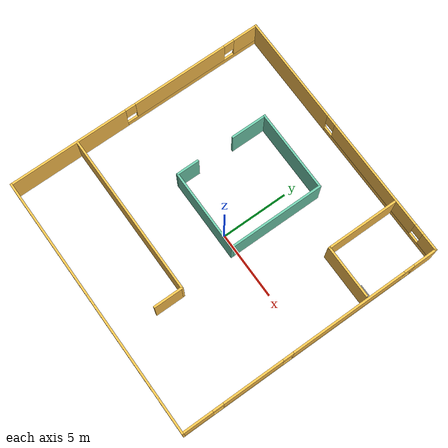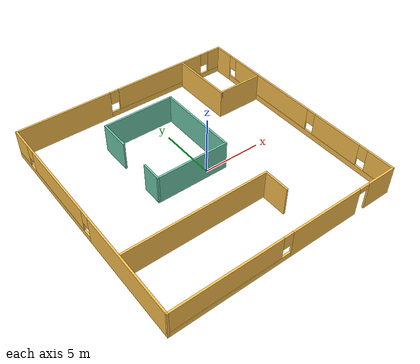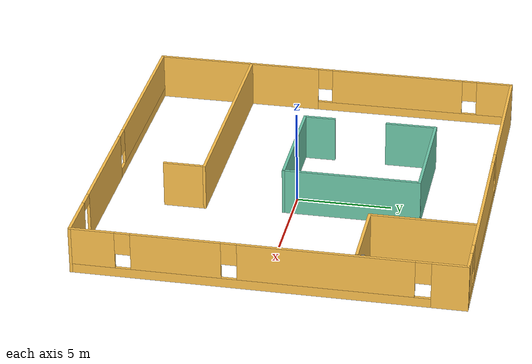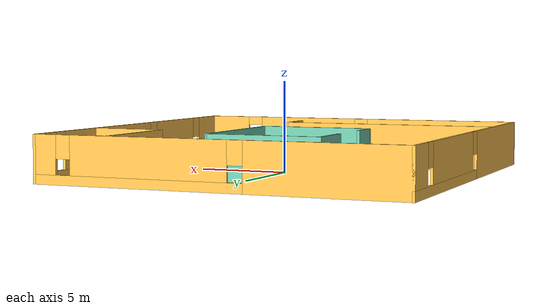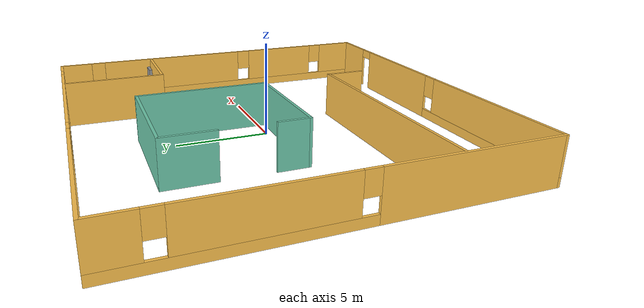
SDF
<?xml version='1.0'?>
<sdf version='1.6'>
  <model name='better_office'>
    <pose frame=''>-0.62787 0.187364 0 0 -0 0</pose>
    <link name='Door_0'>
      <collision name='Door_0_Collision'>
        <geometry>
          <box>
            <size>0.9 0.17 2</size>
          </box>
        </geometry>
        <pose frame=''>0 0 1 0 -0 0</pose>
      </collision>
      <visual name='Door_0_Visual'>
        <pose frame=''>0 0 1 0 -0 0</pose>
        <geometry>
          <box>
            <size>0.9 0.17 2</size>
          </box>
        </geometry>
        <material>
          <script>
            <uri>file://media/materials/scripts/gazebo.material</uri>
            <name>Gazebo/Grey</name>
          </script>
        </material>
      </visual>
      <pose frame=''>9.27377 4.6409 0 0 -0 0</pose>
    </link>
    <link name='Wall_11'>
      <pose frame=''>0 9.925 0 0 -0 0</pose>
      <visual name='Wall_11_Visual_0'>
        <pose frame=''>-5.73664 0 1.25 0 -0 0</pose>
        <geometry>
          <box>
            <size>8.27672 0.15 2.5</size>
          </box>
        </geometry>
        <material>
          <script>
            <uri>file://media/materials/scripts/gazebo.material</uri>
            <name>Gazebo/Grey</name>
          </script>
          <ambient>1 0.764706 0.305882 1</ambient>
        </material>
      </visual>
      <collision name='Wall_11_Collision_0'>
        <geometry>
          <box>
            <size>8.27672 0.15 2.5</size>
          </box>
        </geometry>
        <pose frame=''>-5.73664 0 1.25 0 -0 0</pose>
      </collision>
      <visual name='Wall_11_Visual_1'>
        <pose frame=''>4.13836 0 0.25 0 -0 0</pose>
        <geometry>
          <box>
            <size>11.4733 0.15 0.5</size>
          </box>
        </geometry>
        <material>
          <script>
            <uri>file://media/materials/scripts/gazebo.material</uri>
            <name>Gazebo/Grey</name>
          </script>
          <ambient>1 0.764706 0.305882 1</ambient>
        </material>
      </visual>
      <collision name='Wall_11_Collision_1'>
        <geometry>
          <box>
            <size>11.4733 0.15 0.5</size>
          </box>
        </geometry>
        <pose frame=''>4.13836 0 0.25 0 -0 0</pose>
      </collision>
      <visual name='Wall_11_Visual_2'>
        <pose frame=''>3.47169 0 1.5 0 -0 0</pose>
        <geometry>
          <box>
            <size>8.53993 0.15 2</size>
          </box>
        </geometry>
        <material>
          <script>
            <uri>file://media/materials/scripts/gazebo.material</uri>
            <name>Gazebo/Grey</name>
          </script>
          <ambient>1 0.764706 0.305882 1</ambient>
        </material>
      </visual>
      <collision name='Wall_11_Collision_2'>
        <geometry>
          <box>
            <size>8.53993 0.15 2</size>
          </box>
        </geometry>
        <pose frame=''>3.47169 0 1.5 0 -0 0</pose>
      </collision>
      <visual name='Wall_11_Visual_3'>
        <pose frame=''>9.20833 0 1.5 0 -0 0</pose>
        <geometry>
          <box>
            <size>1.33335 0.15 2</size>
          </box>
        </geometry>
        <material>
          <script>
            <uri>file://media/materials/scripts/gazebo.material</uri>
            <name>Gazebo/Grey</name>
          </script>
          <ambient>1 0.764706 0.305882 1</ambient>
        </material>
      </visual>
      <collision name='Wall_11_Collision_3'>
        <geometry>
          <box>
            <size>1.33335 0.15 2</size>
          </box>
        </geometry>
        <pose frame=''>9.20833 0 1.5 0 -0 0</pose>
      </collision>
      <visual name='Wall_11_Visual_4'>
        <pose frame=''>-1.19828 0 1.9 0 -0 0</pose>
        <geometry>
          <box>
            <size>0.8 0.15 1.2</size>
          </box>
        </geometry>
        <material>
          <script>
            <uri>file://media/materials/scripts/gazebo.material</uri>
            <name>Gazebo/Grey</name>
          </script>
          <ambient>1 0.764706 0.305882 1</ambient>
        </material>
      </visual>
      <collision name='Wall_11_Collision_4'>
        <geometry>
          <box>
            <size>0.8 0.15 1.2</size>
          </box>
        </geometry>
        <pose frame=''>-1.19828 0 1.9 0 -0 0</pose>
      </collision>
      <visual name='Wall_11_Visual_5'>
        <pose frame=''>8.14165 0 1.9 0 -0 0</pose>
        <geometry>
          <box>
            <size>0.8 0.15 1.2</size>
          </box>
        </geometry>
        <material>
          <script>
            <uri>file://media/materials/scripts/gazebo.material</uri>
            <name>Gazebo/Grey</name>
          </script>
          <ambient>1 0.764706 0.305882 1</ambient>
        </material>
      </visual>
      <collision name='Wall_11_Collision_5'>
        <geometry>
          <box>
            <size>0.8 0.15 1.2</size>
          </box>
        </geometry>
        <pose frame=''>8.14165 0 1.9 0 -0 0</pose>
      </collision>
    </link>
    <link name='Wall_12'>
      <pose frame=''>9.8 0 0 0 0 -1.5708</pose>
      <visual name='Wall_12_Visual_0'>
        <pose frame=''>-9.07711 0 1.25 0 -0 0</pose>
        <geometry>
          <box>
            <size>1.84579 0.15 2.5</size>
          </box>
        </geometry>
        <material>
          <script>
            <uri>file://media/materials/scripts/gazebo.material</uri>
            <name>Gazebo/Grey</name>
          </script>
          <ambient>1 0.764706 0.305882 1</ambient>
        </material>
      </visual>
      <collision name='Wall_12_Collision_0'>
        <geometry>
          <box>
            <size>1.84579 0.15 2.5</size>
          </box>
        </geometry>
        <pose frame=''>-9.07711 0 1.25 0 -0 0</pose>
      </collision>
      <visual name='Wall_12_Visual_1'>
        <pose frame=''>0.922894 0 0.25 0 -0 0</pose>
        <geometry>
          <box>
            <size>18.1542 0.15 0.5</size>
          </box>
        </geometry>
        <material>
          <script>
            <uri>file://media/materials/scripts/gazebo.material</uri>
            <name>Gazebo/Grey</name>
          </script>
          <ambient>1 0.764706 0.305882 1</ambient>
        </material>
      </visual>
      <collision name='Wall_12_Collision_1'>
        <geometry>
          <box>
            <size>18.1542 0.15 0.5</size>
          </box>
        </geometry>
        <pose frame=''>0.922894 0 0.25 0 -0 0</pose>
      </collision>
      <visual name='Wall_12_Visual_2'>
        <pose frame=''>-2.94273 0 1.5 0 -0 0</pose>
        <geometry>
          <box>
            <size>8.82296 0.15 2</size>
          </box>
        </geometry>
        <material>
          <script>
            <uri>file://media/materials/scripts/gazebo.material</uri>
            <name>Gazebo/Grey</name>
          </script>
          <ambient>1 0.764706 0.305882 1</ambient>
        </material>
      </visual>
      <collision name='Wall_12_Collision_2'>
        <geometry>
          <box>
            <size>8.82296 0.15 2</size>
          </box>
        </geometry>
        <pose frame=''>-2.94273 0 1.5 0 -0 0</pose>
      </collision>
      <visual name='Wall_12_Visual_3'>
        <pose frame=''>4.55752 0 1.5 0 -0 0</pose>
        <geometry>
          <box>
            <size>4.57754 0.15 2</size>
          </box>
        </geometry>
        <material>
          <script>
            <uri>file://media/materials/scripts/gazebo.material</uri>
            <name>Gazebo/Grey</name>
          </script>
          <ambient>1 0.764706 0.305882 1</ambient>
        </material>
      </visual>
      <collision name='Wall_12_Collision_3'>
        <geometry>
          <box>
            <size>4.57754 0.15 2</size>
          </box>
        </geometry>
        <pose frame=''>4.55752 0 1.5 0 -0 0</pose>
      </collision>
      <visual name='Wall_12_Visual_4'>
        <pose frame=''>8.82314 0 1.5 0 -0 0</pose>
        <geometry>
          <box>
            <size>2.35371 0.15 2</size>
          </box>
        </geometry>
        <material>
          <script>
            <uri>file://media/materials/scripts/gazebo.material</uri>
            <name>Gazebo/Grey</name>
          </script>
          <ambient>1 0.764706 0.305882 1</ambient>
        </material>
      </visual>
      <collision name='Wall_12_Collision_4'>
        <geometry>
          <box>
            <size>2.35371 0.15 2</size>
          </box>
        </geometry>
        <pose frame=''>8.82314 0 1.5 0 -0 0</pose>
      </collision>
      <visual name='Wall_12_Visual_5'>
        <pose frame=''>-7.75421 0 1.9 0 -0 0</pose>
        <geometry>
          <box>
            <size>0.8 0.15 1.2</size>
          </box>
        </geometry>
        <material>
          <script>
            <uri>file://media/materials/scripts/gazebo.material</uri>
            <name>Gazebo/Grey</name>
          </script>
          <ambient>1 0.764706 0.305882 1</ambient>
        </material>
      </visual>
      <collision name='Wall_12_Collision_5'>
        <geometry>
          <box>
            <size>0.8 0.15 1.2</size>
          </box>
        </geometry>
        <pose frame=''>-7.75421 0 1.9 0 -0 0</pose>
      </collision>
      <visual name='Wall_12_Visual_6'>
        <pose frame=''>1.86875 0 1.9 0 -0 0</pose>
        <geometry>
          <box>
            <size>0.8 0.15 1.2</size>
          </box>
        </geometry>
        <material>
          <script>
            <uri>file://media/materials/scripts/gazebo.material</uri>
            <name>Gazebo/Grey</name>
          </script>
          <ambient>1 0.764706 0.305882 1</ambient>
        </material>
      </visual>
      <collision name='Wall_12_Collision_6'>
        <geometry>
          <box>
            <size>0.8 0.15 1.2</size>
          </box>
        </geometry>
        <pose frame=''>1.86875 0 1.9 0 -0 0</pose>
      </collision>
      <visual name='Wall_12_Visual_7'>
        <pose frame=''>7.24629 0 1.9 0 -0 0</pose>
        <geometry>
          <box>
            <size>0.8 0.15 1.2</size>
          </box>
        </geometry>
        <material>
          <script>
            <uri>file://media/materials/scripts/gazebo.material</uri>
            <name>Gazebo/Grey</name>
          </script>
          <ambient>1 0.764706 0.305882 1</ambient>
        </material>
      </visual>
      <collision name='Wall_12_Collision_7'>
        <geometry>
          <box>
            <size>0.8 0.15 1.2</size>
          </box>
        </geometry>
        <pose frame=''>7.24629 0 1.9 0 -0 0</pose>
      </collision>
    </link>
    <link name='Wall_13'>
      <pose frame=''>0 -9.925 0 0 -0 3.14159</pose>
      <visual name='Wall_13_Visual_0'>
        <pose frame=''>-8.56113 0 1.25 0 -0 0</pose>
        <geometry>
          <box>
            <size>2.62773 0.15 2.5</size>
          </box>
        </geometry>
        <material>
          <script>
            <uri>file://media/materials/scripts/gazebo.material</uri>
            <name>Gazebo/Grey</name>
          </script>
          <ambient>1 0.764706 0.305882 1</ambient>
        </material>
      </visual>
      <collision name='Wall_13_Collision_0'>
        <geometry>
          <box>
            <size>2.62773 0.15 2.5</size>
          </box>
        </geometry>
        <pose frame=''>-8.56113 0 1.25 0 -0 0</pose>
      </collision>
      <visual name='Wall_13_Visual_1'>
        <pose frame=''>-3.19904 0 1.25 0 -0 0</pose>
        <geometry>
          <box>
            <size>6.29646 0.15 2.5</size>
          </box>
        </geometry>
        <material>
          <script>
            <uri>file://media/materials/scripts/gazebo.material</uri>
            <name>Gazebo/Grey</name>
          </script>
          <ambient>1 0.764706 0.305882 1</ambient>
        </material>
      </visual>
      <collision name='Wall_13_Collision_1'>
        <geometry>
          <box>
            <size>6.29646 0.15 2.5</size>
          </box>
        </geometry>
        <pose frame=''>-3.19904 0 1.25 0 -0 0</pose>
      </collision>
      <visual name='Wall_13_Visual_2'>
        <pose frame=''>4.9121 0 0.25 0 -0 0</pose>
        <geometry>
          <box>
            <size>9.92581 0.15 0.5</size>
          </box>
        </geometry>
        <material>
          <script>
            <uri>file://media/materials/scripts/gazebo.material</uri>
            <name>Gazebo/Grey</name>
          </script>
          <ambient>1 0.764706 0.305882 1</ambient>
        </material>
      </visual>
      <collision name='Wall_13_Collision_2'>
        <geometry>
          <box>
            <size>9.92581 0.15 0.5</size>
          </box>
        </geometry>
        <pose frame=''>4.9121 0 0.25 0 -0 0</pose>
      </collision>
      <visual name='Wall_13_Visual_3'>
        <pose frame=''>5.3121 0 1.5 0 -0 0</pose>
        <geometry>
          <box>
            <size>9.12581 0.15 2</size>
          </box>
        </geometry>
        <material>
          <script>
            <uri>file://media/materials/scripts/gazebo.material</uri>
            <name>Gazebo/Grey</name>
          </script>
          <ambient>1 0.764706 0.305882 1</ambient>
        </material>
      </visual>
      <collision name='Wall_13_Collision_3'>
        <geometry>
          <box>
            <size>9.12581 0.15 2</size>
          </box>
        </geometry>
        <pose frame=''>5.3121 0 1.5 0 -0 0</pose>
      </collision>
      <visual name='Wall_13_Visual_4'>
        <pose frame=''>0.349194 0 1.9 0 -0 0</pose>
        <geometry>
          <box>
            <size>0.8 0.15 1.2</size>
          </box>
        </geometry>
        <material>
          <script>
            <uri>file://media/materials/scripts/gazebo.material</uri>
            <name>Gazebo/Grey</name>
          </script>
          <ambient>1 0.764706 0.305882 1</ambient>
        </material>
      </visual>
      <collision name='Wall_13_Collision_4'>
        <geometry>
          <box>
            <size>0.8 0.15 1.2</size>
          </box>
        </geometry>
        <pose frame=''>0.349194 0 1.9 0 -0 0</pose>
      </collision>
      <visual name='Wall_13_Visual_5'>
        <pose frame=''>-6.79727 0 2.25 0 -0 0</pose>
        <geometry>
          <box>
            <size>0.9 0.15 0.5</size>
          </box>
        </geometry>
        <material>
          <script>
            <uri>file://media/materials/scripts/gazebo.material</uri>
            <name>Gazebo/Grey</name>
          </script>
          <ambient>1 0.764706 0.305882 1</ambient>
        </material>
      </visual>
      <collision name='Wall_13_Collision_5'>
        <geometry>
          <box>
            <size>0.9 0.15 0.5</size>
          </box>
        </geometry>
        <pose frame=''>-6.79727 0 2.25 0 -0 0</pose>
      </collision>
    </link>
    <link name='Wall_14'>
      <pose frame=''>-9.8 0 0 0 -0 1.5708</pose>
      <visual name='Wall_14_Visual_0'>
        <pose frame=''>-5.46218 0 1.25 0 -0 0</pose>
        <geometry>
          <box>
            <size>9.07564 0.15 2.5</size>
          </box>
        </geometry>
        <material>
          <script>
            <uri>file://media/materials/scripts/gazebo.material</uri>
            <name>Gazebo/Grey</name>
          </script>
          <ambient>1 0.764706 0.305882 1</ambient>
        </material>
      </visual>
      <collision name='Wall_14_Collision_0'>
        <geometry>
          <box>
            <size>9.07564 0.15 2.5</size>
          </box>
        </geometry>
        <pose frame=''>-5.46218 0 1.25 0 -0 0</pose>
      </collision>
      <visual name='Wall_14_Visual_1'>
        <pose frame=''>4.53782 0 0.25 0 -0 0</pose>
        <geometry>
          <box>
            <size>10.9244 0.15 0.5</size>
          </box>
        </geometry>
        <material>
          <script>
            <uri>file://media/materials/scripts/gazebo.material</uri>
            <name>Gazebo/Grey</name>
          </script>
          <ambient>1 0.764706 0.305882 1</ambient>
        </material>
      </visual>
      <collision name='Wall_14_Collision_1'>
        <geometry>
          <box>
            <size>10.9244 0.15 0.5</size>
          </box>
        </geometry>
        <pose frame=''>4.53782 0 0.25 0 -0 0</pose>
      </collision>
      <visual name='Wall_14_Visual_2'>
        <pose frame=''>3.54417 0 1.5 0 -0 0</pose>
        <geometry>
          <box>
            <size>7.33706 0.15 2</size>
          </box>
        </geometry>
        <material>
          <script>
            <uri>file://media/materials/scripts/gazebo.material</uri>
            <name>Gazebo/Grey</name>
          </script>
          <ambient>1 0.764706 0.305882 1</ambient>
        </material>
      </visual>
      <collision name='Wall_14_Collision_2'>
        <geometry>
          <box>
            <size>7.33706 0.15 2</size>
          </box>
        </geometry>
        <pose frame=''>3.54417 0 1.5 0 -0 0</pose>
      </collision>
      <visual name='Wall_14_Visual_3'>
        <pose frame=''>9.00635 0 1.5 0 -0 0</pose>
        <geometry>
          <box>
            <size>1.9873 0.15 2</size>
          </box>
        </geometry>
        <material>
          <script>
            <uri>file://media/materials/scripts/gazebo.material</uri>
            <name>Gazebo/Grey</name>
          </script>
          <ambient>1 0.764706 0.305882 1</ambient>
        </material>
      </visual>
      <collision name='Wall_14_Collision_3'>
        <geometry>
          <box>
            <size>1.9873 0.15 2</size>
          </box>
        </geometry>
        <pose frame=''>9.00635 0 1.5 0 -0 0</pose>
      </collision>
      <visual name='Wall_14_Visual_4'>
        <pose frame=''>-0.524364 0 1.9 0 -0 0</pose>
        <geometry>
          <box>
            <size>0.8 0.15 1.2</size>
          </box>
        </geometry>
        <material>
          <script>
            <uri>file://media/materials/scripts/gazebo.material</uri>
            <name>Gazebo/Grey</name>
          </script>
          <ambient>1 0.764706 0.305882 1</ambient>
        </material>
      </visual>
      <collision name='Wall_14_Collision_4'>
        <geometry>
          <box>
            <size>0.8 0.15 1.2</size>
          </box>
        </geometry>
        <pose frame=''>-0.524364 0 1.9 0 -0 0</pose>
      </collision>
      <visual name='Wall_14_Visual_5'>
        <pose frame=''>7.6127 0 1.9 0 -0 0</pose>
        <geometry>
          <box>
            <size>0.8 0.15 1.2</size>
          </box>
        </geometry>
        <material>
          <script>
            <uri>file://media/materials/scripts/gazebo.material</uri>
            <name>Gazebo/Grey</name>
          </script>
          <ambient>1 0.764706 0.305882 1</ambient>
        </material>
      </visual>
      <collision name='Wall_14_Collision_5'>
        <geometry>
          <box>
            <size>0.8 0.15 1.2</size>
          </box>
        </geometry>
        <pose frame=''>7.6127 0 1.9 0 -0 0</pose>
      </collision>
    </link>
    <link name='Wall_17'>
      <collision name='Wall_17_Collision'>
        <geometry>
          <box>
            <size>2.75 0.15 2.5</size>
          </box>
        </geometry>
        <pose frame=''>0 0 1.25 0 -0 0</pose>
      </collision>
      <visual name='Wall_17_Visual'>
        <pose frame=''>0 0 1.25 0 -0 0</pose>
        <geometry>
          <box>
            <size>2.75 0.15 2.5</size>
          </box>
        </geometry>
        <material>
          <script>
            <uri>file://media/materials/scripts/gazebo.material</uri>
            <name>Gazebo/Grey</name>
          </script>
          <ambient>0.435294 0.796078 0.67451 1</ambient>
        </material>
      </visual>
      <pose frame=''>-4.0561 5.16257 0 0 -0 1.5708</pose>
    </link>
    <link name='Wall_18'>
      <collision name='Wall_18_Collision'>
        <geometry>
          <box>
            <size>6.25 0.15 2.5</size>
          </box>
        </geometry>
        <pose frame=''>0 0 1.25 0 -0 0</pose>
      </collision>
      <visual name='Wall_18_Visual'>
        <pose frame=''>0 0 1.25 0 -0 0</pose>
        <geometry>
          <box>
            <size>6.25 0.15 2.5</size>
          </box>
        </geometry>
        <material>
          <script>
            <uri>file://media/materials/scripts/gazebo.material</uri>
            <name>Gazebo/Grey</name>
          </script>
          <ambient>0.435294 0.796078 0.67451 1</ambient>
        </material>
      </visual>
      <pose frame=''>-1.0061 6.46257 0 0 -0 0</pose>
    </link>
    <link name='Wall_19'>
      <collision name='Wall_19_Collision'>
        <geometry>
          <box>
            <size>7.25 0.15 2.5</size>
          </box>
        </geometry>
        <pose frame=''>0 0 1.25 0 -0 0</pose>
      </collision>
      <visual name='Wall_19_Visual'>
        <pose frame=''>0 0 1.25 0 -0 0</pose>
        <geometry>
          <box>
            <size>7.25 0.15 2.5</size>
          </box>
        </geometry>
        <material>
          <script>
            <uri>file://media/materials/scripts/gazebo.material</uri>
            <name>Gazebo/Grey</name>
          </script>
          <ambient>0.435294 0.796078 0.67451 1</ambient>
        </material>
      </visual>
      <pose frame=''>2.0439 2.91257 0 0 0 -1.5708</pose>
    </link>
    <link name='Wall_20'>
      <collision name='Wall_20_Collision'>
        <geometry>
          <box>
            <size>6.25 0.15 2.5</size>
          </box>
        </geometry>
        <pose frame=''>0 0 1.25 0 -0 0</pose>
      </collision>
      <visual name='Wall_20_Visual'>
        <pose frame=''>0 0 1.25 0 -0 0</pose>
        <geometry>
          <box>
            <size>6.25 0.15 2.5</size>
          </box>
        </geometry>
        <material>
          <script>
            <uri>file://media/materials/scripts/gazebo.material</uri>
            <name>Gazebo/Grey</name>
          </script>
          <ambient>0.435294 0.796078 0.67451 1</ambient>
        </material>
      </visual>
      <pose frame=''>-1.0061 -0.637427 0 0 -0 3.14159</pose>
    </link>
    <link name='Wall_21'>
      <collision name='Wall_21_Collision'>
        <geometry>
          <box>
            <size>1.75 0.15 2.5</size>
          </box>
        </geometry>
        <pose frame=''>0 0 1.25 0 -0 0</pose>
      </collision>
      <visual name='Wall_21_Visual'>
        <pose frame=''>0 0 1.25 0 -0 0</pose>
        <geometry>
          <box>
            <size>1.75 0.15 2.5</size>
          </box>
        </geometry>
        <material>
          <script>
            <uri>file://media/materials/scripts/gazebo.material</uri>
            <name>Gazebo/Grey</name>
          </script>
          <ambient>0.435294 0.796078 0.67451 1</ambient>
        </material>
      </visual>
      <pose frame=''>-4.0561 0.162573 0 0 -0 1.5708</pose>
    </link>
    <link name='Wall_23'>
      <collision name='Wall_23_Collision'>
        <geometry>
          <box>
            <size>12.2123 0.15 2.5</size>
          </box>
        </geometry>
        <pose frame=''>0 0 1.25 0 -0 0</pose>
      </collision>
      <visual name='Wall_23_Visual'>
        <pose frame=''>0 0 1.25 0 -0 0</pose>
        <geometry>
          <box>
            <size>12.2123 0.15 2.5</size>
          </box>
        </geometry>
        <material>
          <script>
            <uri>file://media/materials/scripts/gazebo.material</uri>
            <name>Gazebo/Grey</name>
          </script>
          <ambient>1 0.764706 0.305882 1</ambient>
        </material>
      </visual>
      <pose frame=''>-3.65799 -4.76979 0 0 -0 0</pose>
    </link>
    <link name='Wall_26'>
      <collision name='Wall_26_Collision'>
        <geometry>
          <box>
            <size>5.5 0.15 2.5</size>
          </box>
        </geometry>
        <pose frame=''>0 0 1.25 0 -0 0</pose>
      </collision>
      <visual name='Wall_26_Visual'>
        <pose frame=''>0 0 1.25 0 -0 0</pose>
        <geometry>
          <box>
            <size>5.5 0.15 2.5</size>
          </box>
        </geometry>
        <material>
          <script>
            <uri>file://media/materials/scripts/gazebo.material</uri>
            <name>Gazebo/Grey</name>
          </script>
          <ambient>1 0.764706 0.305882 1</ambient>
        </material>
      </visual>
      <pose frame=''>5.73591 7.13117 0 0 0 -1.5708</pose>
    </link>
    <link name='Wall_27'>
      <collision name='Wall_27_Collision'>
        <geometry>
          <box>
            <size>4 0.15 2.5</size>
          </box>
        </geometry>
        <pose frame=''>0 0 1.25 0 -0 0</pose>
      </collision>
      <visual name='Wall_27_Visual'>
        <pose frame=''>0 0 1.25 0 -0 0</pose>
        <geometry>
          <box>
            <size>4 0.15 2.5</size>
          </box>
        </geometry>
        <material>
          <script>
            <uri>file://media/materials/scripts/gazebo.material</uri>
            <name>Gazebo/Grey</name>
          </script>
          <ambient>1 0.764706 0.305882 1</ambient>
        </material>
      </visual>
      <pose frame=''>7.66091 4.45617 0 0 -0 0</pose>
    </link>
    <link name='Wall_29'>
      <collision name='Wall_29_Collision'>
        <geometry>
          <box>
            <size>2.25 0.15 2.5</size>
          </box>
        </geometry>
        <pose frame=''>0 0 1.25 0 -0 0</pose>
      </collision>
      <visual name='Wall_29_Visual'>
        <pose frame=''>0 0 1.25 0 -0 0</pose>
        <geometry>
          <box>
            <size>2.25 0.15 2.5</size>
          </box>
        </geometry>
        <material>
          <script>
            <uri>file://media/materials/scripts/gazebo.material</uri>
            <name>Gazebo/Grey</name>
          </script>
          <ambient>1 0.764706 0.305882 1</ambient>
        </material>
      </visual>
      <pose frame=''>2.37315 -5.81979 0 0 0 -1.5708</pose>
    </link>
    <static>1</static>
  </model>
</sdf>
